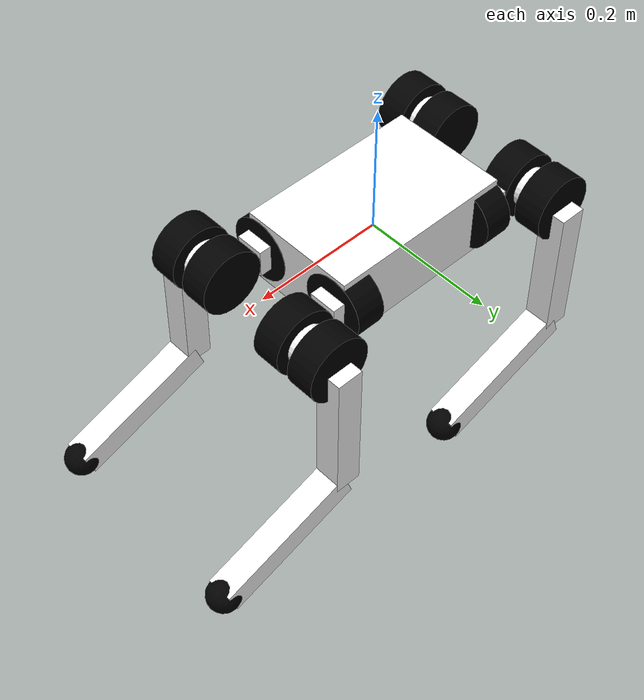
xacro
<?xml version="1.0"?>
<robot xmlns:xacro="http://www.ros.org/wiki/xacro" name="padwq">

    <xacro:arg name="prefix" default=""/>

    <!-- import materials -->
    <xacro:include filename="$(find padwq_description)/urdf/padwq.materials.xacro"/>

    <!-- import robot description -->
    <xacro:include filename="$(find padwq_description)/urdf/padwq.description.xacro"/>

    <!-- import gazebo description -->
    <xacro:include filename="$(find padwq_description)/urdf/padwq.gazebo.xacro"/>

    <!-- import ros2_control description -->
    <xacro:include filename="$(find padwq_description)/urdf/padwq.ros2_control.xacro"/>

    <xacro:padwq prefix="$(arg prefix)"/>
    <xacro:gazebo prefix="$(arg prefix)"/>
    <xacro:padwq_ros2_control name="GazeboSimSystem" prefix="$(arg prefix)"/>

</robot>

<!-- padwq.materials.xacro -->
<robot>
    <material name="black">
        <color rgba="0.0 0.0 0.0 1.0"/>
    </material>

    <material name="blue">
        <color rgba="0.0 0.0 0.8 1.0"/>
    </material>

    <material name="green">
        <color rgba="0.0 0.8 0.0 1.0"/>
    </material>

    <material name="grey">
        <color rgba="0.2 0.2 0.2 1.0"/>
    </material>

    <material name="orange">
        <color rgba="${255/255} ${108/255} ${10/255} 1.0"/>
    </material>

    <material name="brown">
        <color rgba="${222/255} ${207/255} ${195/255} 1.0"/>
    </material>

    <material name="red">
        <color rgba="0.8 0.0 0.0 1.0"/>
    </material>

    <material name="yellow">
        <color rgba="1.0 1.0 0.0 1.0"/>
    </material>

    <material name="white">
        <color rgba="1.0 1.0 1.0 1.0"/>
    </material>
</robot>

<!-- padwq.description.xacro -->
<robot xmlns:xacro="http://www.ros.org/wiki/xacro">

    <xacro:macro name="padwq" params="prefix">

        <xacro:include filename="$(find padwq_description)/urdf/inertia.xacro"/>

        <xacro:property name="deg2rad" value="${pi/180}"/>

        <xacro:property name="rdm_l" value="0.043"/>
        <xacro:property name="rdm_r" value="0.049"/>
        <xacro:property name="connector_l" value="0.019"/>
        <xacro:property name="visual_offset" value="0.001"/>

        <link name="${prefix}base_link">
            <xacro:inertia_box mass="9" x="0.283" y="0.180" z="0.108">
                <origin xyz="0 0 0" rpy="0 0 0"/>
            </xacro:inertia_box>
            <visual>
                <origin rpy="0 0 0" xyz="0 0 0"/>
                <geometry>
                    <box size="0.283 0.180 0.108"/>
                </geometry>
                <material name="white"/>
            </visual>
            <collision>
                <origin rpy="0 0 0" xyz="0 0 0"/>
                <geometry>
                    <box size="0.283 0.180 0.108"/>
                </geometry>
            </collision>
        </link>

        <!-- front left -->
        <joint name="${prefix}fl_base_to_hip" type="fixed">
            <axis xyz="0 0 0"/>
            <parent link="${prefix}base_link"/>
            <child link="${prefix}fl_hip_roll_actuator"/>
            <origin rpy="0 ${pi/2} 0" xyz="0.1415 0.07 0"/>
        </joint>

        <link name="${prefix}fl_hip_roll_actuator">
            <xacro:inertia_cylinder mass="0.62" length="${rdm_l}" radius="${rdm_r}">
                <origin rpy="0 0 0" xyz="0 0 -${rdm_l/2}"/>
            </xacro:inertia_cylinder>
            <visual>
                <origin rpy="0 0 0" xyz="0 0 -${rdm_l/2}"/>
                <geometry>
                    <cylinder length="${rdm_l + visual_offset}" radius="${rdm_r}"/>
                </geometry>
                <material name="black"/>
            </visual>
            <collision>
                <origin rpy="0 0 0" xyz="0 0 -${rdm_l/2}"/>
                <geometry>
                    <cylinder length="${rdm_l}" radius="${rdm_r}"/>
                </geometry>
            </collision>
        </link>

        <joint name="${prefix}fl_hip_roll" type="revolute">
            <axis xyz="0 0 1"/>
            <parent link="${prefix}fl_hip_roll_actuator"/>
            <child link="${prefix}fl_hip_pitch_connector"/>
            <origin rpy="0 0 0" xyz="0 0 0"/>
            <limit effort="20.0" lower="${-30 * deg2rad}" upper="${30 * deg2rad}" velocity="10"/>
            <dynamics damping="1.0" friction="1.0"/>
        </joint>

        <link name="${prefix}fl_hip_pitch_connector">
            <xacro:inertia_box mass="0.05" x="${rdm_l}" y="${rdm_l}" z="${connector_l}">
                <origin rpy="0 0 0" xyz="0 0 ${connector_l/2}"/>
            </xacro:inertia_box>
            <visual>
                <origin rpy="0 0 0" xyz="0 0 ${connector_l/2}"/>
                <geometry>
                    <box size="${rdm_l} ${rdm_l} ${connector_l}"/>
                </geometry>
                <material name="white"/>
            </visual>
            <collision>
                <origin rpy="0 0 0" xyz="0 0 ${connector_l/2}"/>
                <geometry>
                    <box size="${rdm_l} ${rdm_l} ${connector_l}"/>
                </geometry>
            </collision>
        </link>

        <joint name="${prefix}fl_hip_pitch" type="revolute">
            <axis xyz="0 0 1"/>
            <parent link="${prefix}fl_hip_pitch_connector"/>
            <child link="${prefix}fl_hip_pitch_actuator"/>
            <origin rpy="${pi/2} 0 0" xyz="0 ${rdm_l/2} 0.068"/>
            <limit effort="20.0" lower="${-51 * deg2rad}" upper="${93 * deg2rad}" velocity="10"/>
            <dynamics damping="1.0" friction="1.0"/>
        </joint>

        <link name="${prefix}fl_hip_pitch_actuator">
            <xacro:inertia_cylinder mass="0.62" length="${rdm_l}" radius="${rdm_r}">
                <origin rpy="0 0 0" xyz="0 0 ${rdm_l/2}"/>
            </xacro:inertia_cylinder>
            <visual>
                <origin rpy="0 0 0" xyz="0 0 ${rdm_l/2}"/>
                <geometry>
                    <cylinder length="${rdm_l}" radius="${rdm_r}"/>
                </geometry>
                <material name="black"/>
            </visual>
            <collision>
                <origin rpy="0 0 0" xyz="0 0 ${rdm_l/2}"/>
                <geometry>
                    <cylinder length="${rdm_l}" radius="${rdm_r}"/>
                </geometry>
            </collision>
        </link>

        <joint name="${prefix}fl_hip_to_knee" type="fixed">
            <parent link="${prefix}fl_hip_pitch_actuator"/>
            <child link="${prefix}fl_knee_pitch_connector"/>
            <origin rpy="0 0 0" xyz="0 0 0"/>
        </joint>

        <link name="${prefix}fl_knee_pitch_connector">
            <xacro:inertia_cylinder mass="0.05" length="${connector_l}" radius="0.03">
                <origin rpy="0 0 0" xyz="0 0 -${connector_l/2}"/>
            </xacro:inertia_cylinder>
            <visual>
                <origin rpy="0 0 0" xyz="0 0 -${connector_l/2}"/>
                <geometry>
                    <cylinder length="${connector_l}" radius="0.03"/>
                </geometry>
                <material name="white"/>
            </visual>
            <collision>
                <origin rpy="0 0 0" xyz="0 0 -${connector_l/2}"/>
                <geometry>
                    <cylinder length="${connector_l}" radius="0.03"/>
                </geometry>
            </collision>
        </link>

        <joint name="${prefix}fl_knee_connector_to_actuator" type="fixed">
            <parent link="${prefix}fl_knee_pitch_connector"/>
            <child link="${prefix}fl_knee_pitch_actuator"/>
            <origin rpy="0 0 0" xyz="0 0 -0.062"/>
        </joint>

        <link name="${prefix}fl_knee_pitch_actuator">
            <xacro:inertia_cylinder mass="0.62" length="${rdm_l}" radius="${rdm_r}">
                <origin rpy="0 0 0" xyz="0 0 ${rdm_l/2}"/>
            </xacro:inertia_cylinder>
            <visual>
                <origin rpy="0 0 0" xyz="0 0 ${rdm_l/2}"/>
                <geometry>
                    <cylinder length="${rdm_l}" radius="${rdm_r}"/>
                </geometry>
                <material name="black"/>
            </visual>
            <collision>
                <origin rpy="0 0 0" xyz="0 0 ${rdm_l/2}"/>
                <geometry>
                    <cylinder length="${rdm_l}" radius="${rdm_r}"/>
                </geometry>
            </collision>
        </link>

        <joint name="${prefix}fl_knee_pitch_actuator_to_upper_link" type="fixed">
            <parent link="${prefix}fl_knee_pitch_actuator"/>
            <child link="${prefix}fl_upper_link"/>
            <origin rpy="0 0 0" xyz="0 0 0"/>
        </joint>

        <link name="${prefix}fl_upper_link">
            <xacro:inertia_box mass="0.2" x="0.22" y="0.04" z="0.04">
                <origin rpy="0 0 0" xyz="0.11 0 0"/>
            </xacro:inertia_box>
            <visual>
                <origin rpy="0 0 0" xyz="0.11 0 0"/>
                <geometry>
                    <box size="0.22 0.04 0.04"/>
                </geometry>
                <material name="white"/>
            </visual>
            <collision>
                <origin rpy="0 0 0" xyz="0.11 0 0"/>
                <geometry>
                    <box size="0.22 0.04 0.04"/>
                </geometry>
            </collision>
        </link>

        <joint name="${prefix}fl_knee_pitch" type="revolute">
            <axis xyz="0 0 1"/>
            <parent link="${prefix}fl_upper_link"/>
            <child link="${prefix}fl_under_link"/>
            <origin rpy="0 0 0" xyz="0.22 0 0"/>
            <limit effort="20.0" lower="${7 * deg2rad}" upper="${134 * deg2rad}" velocity="10"/>
            <dynamics damping="1.0" friction="1.0"/>
        </joint>

        <link name="${prefix}fl_under_link">
            <xacro:inertia_box mass="0.08" x="0.22" y="0.04" z="0.04">
                <origin rpy="0 0 0" xyz="0.11 0 0"/>
            </xacro:inertia_box>
            <visual>
                <origin rpy="0 0 0" xyz="0.11 0 0"/>
                <geometry>
                    <box size="0.22 0.04 0.04"/>
                </geometry>
                <material name="white"/>
            </visual>
            <collision>
                <origin rpy="0 0 0" xyz="0.11 0 0"/>
                <geometry>
                    <box size="0.22 0.04 0.04"/>
                </geometry>
            </collision>
        </link>

        <joint name="${prefix}fl_foot" type="fixed">
            <axis xyz="0 1 0"/>
            <parent link="${prefix}fl_under_link"/>
            <child link="${prefix}fl_foot"/>
            <origin rpy="0 0 0" xyz="0.22 0 0"/>
        </joint>

        <link name="${prefix}fl_foot">
            <visual>
                <origin rpy="0 0 0" xyz="0 0 0"/>
                <geometry>
                    <sphere radius="0.025"/>
                </geometry>
                <material name="black"/>
            </visual>
            <collision>
                <origin rpy="0 0 0" xyz="0 0 0"/>
                <geometry>
                    <sphere radius="0.025"/>
                </geometry>
            </collision>
        </link>

        <!-- front right -->

        <joint name="${prefix}fr_base_to_hip" type="fixed">
            <axis xyz="0 0 0"/>
            <parent link="${prefix}base_link"/>
            <child link="${prefix}fr_hip_roll_actuator"/>
            <origin rpy="0 ${pi/2} 0" xyz="0.1415 -0.07 0"/>
        </joint>

        <link name="${prefix}fr_hip_roll_actuator">
            <xacro:inertia_cylinder mass="0.62" length="${rdm_l}" radius="${rdm_r}">
                <origin rpy="0 0 0" xyz="0 0 ${-rdm_l/2}"/>
            </xacro:inertia_cylinder>
            <visual>
                <origin rpy="0 0 0" xyz="0 0 ${-rdm_l/2}"/>
                <geometry>
                    <cylinder length="${rdm_l + visual_offset}" radius="${rdm_r}"/>
                </geometry>
                <material name="black"/>
            </visual>
            <collision>
                <origin rpy="0 0 0" xyz="0 0 ${-rdm_l/2}"/>
                <geometry>
                    <cylinder length="${rdm_l}" radius="${rdm_r}"/>
                </geometry>
            </collision>
        </link>

        <joint name="${prefix}fr_hip_roll" type="revolute">
            <axis xyz="0 0 1"/>
            <parent link="${prefix}fr_hip_roll_actuator"/>
            <child link="${prefix}fr_hip_pitch_connector"/>
            <origin rpy="0 0 0" xyz="0 0 0"/>
            <limit effort="20.0" lower="${-30 * deg2rad}" upper="${30 * deg2rad}" velocity="10"/>
            <dynamics damping="1.0" friction="1.0"/>
        </joint>

        <link name="${prefix}fr_hip_pitch_connector">
            <xacro:inertia_box mass="0.05" x="${rdm_l}" y="${rdm_l}" z="${connector_l}">
                <origin rpy="0 0 0" xyz="0 0 ${connector_l/2}"/>
            </xacro:inertia_box>
            <visual>
                <origin rpy="0 0 0" xyz="0 0 ${connector_l/2}"/>
                <geometry>
                    <box size="${rdm_l} ${rdm_l} ${connector_l}"/>
                </geometry>
                <material name="white"/>
            </visual>
            <collision>
                <origin rpy="0 0 0" xyz="0 0 ${connector_l/2}"/>
                <geometry>
                    <box size="${rdm_l} ${rdm_l} ${connector_l}"/>
                </geometry>
            </collision>
        </link>

        <joint name="${prefix}fr_hip_pitch" type="revolute">
            <axis xyz="0 0 1"/>
            <parent link="${prefix}fr_hip_pitch_connector"/>
            <child link="${prefix}fr_hip_pitch_actuator"/>
            <origin rpy="${pi/2} 0 0" xyz="0 -${rdm_l/2} 0.068"/>
            <limit effort="20.0" lower="${-51 * deg2rad}" upper="${93 * deg2rad}" velocity="10"/>
            <dynamics damping="1.0" friction="1.0"/>
        </joint>

        <link name="${prefix}fr_hip_pitch_actuator">
            <xacro:inertia_cylinder mass="0.62" length="${rdm_l}" radius="${rdm_r}">
                <origin rpy="0 0 0" xyz="0 0 -${rdm_l/2}"/>
            </xacro:inertia_cylinder>
            <visual>
                <origin rpy="0 0 0" xyz="0 0 -${rdm_l/2}"/>
                <geometry>
                    <cylinder length="${rdm_l}" radius="${rdm_r}"/>
                </geometry>
                <material name="black"/>
            </visual>
            <collision>
                <origin rpy="0 0 0" xyz="0 0 -${rdm_l/2}"/>
                <geometry>
                    <cylinder length="${rdm_l}" radius="${rdm_r}"/>
                </geometry>
            </collision>
        </link>

        <joint name="${prefix}fr_hip_to_knee" type="fixed">
            <parent link="${prefix}fr_hip_pitch_actuator"/>
            <child link="${prefix}fr_knee_pitch_connector"/>
            <origin rpy="0 0 0" xyz="0 0 0"/>
        </joint>

        <link name="${prefix}fr_knee_pitch_connector">
            <xacro:inertia_cylinder mass="0.05" length="${connector_l}" radius="0.03">
                <origin rpy="0 0 0" xyz="0 0 ${connector_l/2}"/>
            </xacro:inertia_cylinder>
            <visual>
                <origin rpy="0 0 0" xyz="0 0 ${connector_l/2}"/>
                <geometry>
                    <cylinder length="${connector_l}" radius="0.03"/>
                </geometry>
                <material name="white"/>
            </visual>
            <collision>
                <origin rpy="0 0 0" xyz="0 0 ${connector_l/2}"/>
                <geometry>
                    <cylinder length="${connector_l}" radius="0.03"/>
                </geometry>
            </collision>
        </link>

        <joint name="${prefix}fr_knee_connector_to_actuator" type="fixed">
            <parent link="${prefix}fr_knee_pitch_connector"/>
            <child link="${prefix}fr_knee_pitch_actuator"/>
            <origin rpy="0 0 0" xyz="0 0 0.062"/>
        </joint>

        <link name="${prefix}fr_knee_pitch_actuator">
            <xacro:inertia_cylinder mass="0.62" length="${rdm_l}" radius="${rdm_r}">
                <origin rpy="0 0 0" xyz="0 0 -${rdm_l/2}"/>
            </xacro:inertia_cylinder>
            <visual>
                <origin rpy="0 0 0" xyz="0 0 -${rdm_l/2}"/>
                <geometry>
                    <cylinder length="${rdm_l}" radius="${rdm_r}"/>
                </geometry>
                <material name="black"/>
            </visual>
            <collision>
                <origin rpy="0 0 0" xyz="0 0 -${rdm_l/2}"/>
                <geometry>
                    <cylinder length="${rdm_l}" radius="${rdm_r}"/>
                </geometry>
            </collision>
        </link>

        <joint name="${prefix}fr_knee_pitch_actuator_to_upper_link" type="fixed">
            <parent link="${prefix}fr_knee_pitch_actuator"/>
            <child link="${prefix}fr_upper_link"/>
            <origin rpy="0 0 0" xyz="0 0 0"/>
        </joint>

        <link name="${prefix}fr_upper_link">
            <xacro:inertia_box mass="0.2" x="0.22" y="0.04" z="0.04">
                <origin rpy="0 0 0" xyz="0.11 0 0"/>
            </xacro:inertia_box>
            <visual>
                <origin rpy="0 0 0" xyz="0.11 0 0"/>
                <geometry>
                    <box size="0.22 0.04 0.04"/>
                </geometry>
                <material name="white"/>
            </visual>
            <collision>
                <origin rpy="0 0 0" xyz="0.11 0 0"/>
                <geometry>
                    <box size="0.22 0.04 0.04"/>
                </geometry>
            </collision>
        </link>

        <joint name="${prefix}fr_knee_pitch" type="revolute">
            <axis xyz="0 0 1"/>
            <parent link="${prefix}fr_upper_link"/>
            <child link="${prefix}fr_under_link"/>
            <origin rpy="0 0 0" xyz="0.22 0 0"/>
            <limit effort="20.0" lower="${7 * deg2rad}" upper="${134 * deg2rad}" velocity="10"/>
            <dynamics damping="1.0" friction="1.0"/>
        </joint>

        <link name="${prefix}fr_under_link">
            <xacro:inertia_box mass="0.08" x="0.22" y="0.04" z="0.04">
                <origin rpy="0 0 0" xyz="0.11 0 0"/>
            </xacro:inertia_box>
            <visual>
                <origin rpy="0 0 0" xyz="0.11 0 0"/>
                <geometry>
                    <box size="0.22 0.04 0.04"/>
                </geometry>
                <material name="white"/>
            </visual>
            <collision>
                <origin rpy="0 0 0" xyz="0.11 0 0"/>
                <geometry>
                    <box size="0.22 0.04 0.04"/>
                </geometry>
            </collision>
        </link>

        <joint name="${prefix}fr_foot" type="fixed">
            <axis xyz="0 1 0"/>
            <parent link="${prefix}fr_under_link"/>
            <child link="${prefix}fr_foot"/>
            <origin rpy="0 0 0" xyz="0.22 0 0"/>
        </joint>

        <link name="${prefix}fr_foot">
            <visual>
                <origin rpy="0 0 0" xyz="0 0 0"/>
                <geometry>
                    <sphere radius="0.025"/>
                </geometry>
                <material name="black"/>
            </visual>
            <collision>
                <origin rpy="0 0 0" xyz="0 0 0"/>
                <geometry>
                    <sphere radius="0.025"/>
                </geometry>
            </collision>
        </link>

        <!-- rear left -->

        <joint name="${prefix}rl_base_to_hip" type="fixed">
            <axis xyz="0 0 0"/>
            <parent link="${prefix}base_link"/>
            <child link="${prefix}rl_hip_roll_actuator"/>
            <origin rpy="0 ${pi/2} 0" xyz="-0.1415 0.07 0"/>
        </joint>

        <link name="${prefix}rl_hip_roll_actuator">
            <xacro:inertia_cylinder mass="0.62" length="${rdm_l}" radius="${rdm_r}">
                <origin rpy="0 0 0" xyz="0 0 ${rdm_l/2}"/>
            </xacro:inertia_cylinder>
            <visual>
                <origin rpy="0 0 0" xyz="0 0 ${rdm_l/2}"/>
                <geometry>
                    <cylinder length="${rdm_l + visual_offset}" radius="${rdm_r}"/>
                </geometry>
                <material name="black"/>
            </visual>
            <collision>
                <origin rpy="0 0 0" xyz="0 0 ${rdm_l/2}"/>
                <geometry>
                    <cylinder length="${rdm_l}" radius="${rdm_r}"/>
                </geometry>
            </collision>
        </link>

        <joint name="${prefix}rl_hip_roll" type="revolute">
            <axis xyz="0 0 1"/>
            <parent link="${prefix}rl_hip_roll_actuator"/>
            <child link="${prefix}rl_hip_pitch_connector"/>
            <origin rpy="0 0 0" xyz="0 0 0"/>
            <limit effort="20.0" lower="${-30 * deg2rad}" upper="${30 * deg2rad}" velocity="10"/>
            <dynamics damping="1.0" friction="1.0"/>
        </joint>

        <link name="${prefix}rl_hip_pitch_connector">
            <xacro:inertia_box mass="0.05" x="${rdm_l}" y="${rdm_l}" z="${connector_l}">
                <origin rpy="0 0 0" xyz="0 0 -${connector_l/2}"/>
            </xacro:inertia_box>
            <visual>
                <origin rpy="0 0 0" xyz="0 0 -${connector_l/2}"/>
                <geometry>
                    <box size="${rdm_l} ${rdm_l} ${connector_l}"/>
                </geometry>
                <material name="white"/>
            </visual>
            <collision>
                <origin rpy="0 0 0" xyz="0 0 -${connector_l/2}"/>
                <geometry>
                    <box size="${rdm_l} ${rdm_l} ${connector_l}"/>
                </geometry>
            </collision>
        </link>

        <joint name="${prefix}rl_hip_pitch" type="revolute">
            <axis xyz="0 0 1"/>
            <parent link="${prefix}rl_hip_pitch_connector"/>
            <child link="${prefix}rl_hip_pitch_actuator"/>
            <origin rpy="${pi/2} 0 0" xyz="0 ${rdm_l/2} -0.068"/>
            <limit effort="20.0" lower="${-51 * deg2rad}" upper="${93 * deg2rad}" velocity="10"/>
            <dynamics damping="1.0" friction="1.0"/>
        </joint>

        <link name="${prefix}rl_hip_pitch_actuator">
            <xacro:inertia_cylinder mass="0.62" length="${rdm_l}" radius="${rdm_r}">
                <origin rpy="0 0 0" xyz="0 0 ${rdm_l/2}"/>
            </xacro:inertia_cylinder>
            <visual>
                <origin rpy="0 0 0" xyz="0 0 ${rdm_l/2}"/>
                <geometry>
                    <cylinder length="${rdm_l}" radius="${rdm_r}"/>
                </geometry>
                <material name="black"/>
            </visual>
            <collision>
                <origin rpy="0 0 0" xyz="0 0 ${rdm_l/2}"/>
                <geometry>
                    <cylinder length="${rdm_l}" radius="${rdm_r}"/>
                </geometry>
            </collision>
        </link>

        <joint name="${prefix}rl_hip_to_knee" type="fixed">
            <parent link="${prefix}rl_hip_pitch_actuator"/>
            <child link="${prefix}rl_knee_pitch_connector"/>
            <origin rpy="0 0 0" xyz="0 0 0"/>
        </joint>

        <link name="${prefix}rl_knee_pitch_connector">
            <xacro:inertia_cylinder mass="0.05" length="${connector_l}" radius="0.03">
                <origin rpy="0 0 0" xyz="0 0 -${connector_l/2}"/>
            </xacro:inertia_cylinder>
            <visual>
                <origin rpy="0 0 0" xyz="0 0 -${connector_l/2}"/>
                <geometry>
                    <cylinder length="${connector_l}" radius="0.03"/>
                </geometry>
                <material name="white"/>
            </visual>
            <collision>
                <origin rpy="0 0 0" xyz="0 0 -${connector_l/2}"/>
                <geometry>
                    <cylinder length="${connector_l}" radius="0.03"/>
                </geometry>
            </collision>
        </link>

        <joint name="${prefix}rl_knee_connector_to_actuator" type="fixed">
            <parent link="${prefix}rl_knee_pitch_connector"/>
            <child link="${prefix}rl_knee_pitch_actuator"/>
            <origin rpy="0 0 0" xyz="0 0 -0.062"/>
        </joint>

        <link name="${prefix}rl_knee_pitch_actuator">
            <xacro:inertia_cylinder mass="0.62" length="${rdm_l}" radius="${rdm_r}">
                <origin rpy="0 0 0" xyz="0 0 ${rdm_l/2}"/>
            </xacro:inertia_cylinder>
            <visual>
                <origin rpy="0 0 0" xyz="0 0 ${rdm_l/2}"/>
                <geometry>
                    <cylinder length="${rdm_l}" radius="${rdm_r}"/>
                </geometry>
                <material name="black"/>
            </visual>
            <collision>
                <origin rpy="0 0 0" xyz="0 0 ${rdm_l/2}"/>
                <geometry>
                    <cylinder length="${rdm_l}" radius="${rdm_r}"/>
                </geometry>
            </collision>
        </link>

        <joint name="${prefix}rl_knee_pitch_actuator_to_upper_link" type="fixed">
            <parent link="${prefix}rl_knee_pitch_actuator"/>
            <child link="${prefix}rl_upper_link"/>
            <origin rpy="0 0 0" xyz="0 0 0"/>
        </joint>

        <link name="${prefix}rl_upper_link">
            <xacro:inertia_box mass="0.2" x="0.22" y="0.04" z="0.04">
                <origin rpy="0 0 0" xyz="0.11 0 0"/>
            </xacro:inertia_box>
            <visual>
                <origin rpy="0 0 0" xyz="0.11 0 0"/>
                <geometry>
                    <box size="0.22 0.04 0.04"/>
                </geometry>
                <material name="white"/>
            </visual>
            <collision>
                <origin rpy="0 0 0" xyz="0.11 0 0"/>
                <geometry>
                    <box size="0.22 0.04 0.04"/>
                </geometry>
            </collision>
        </link>

        <joint name="${prefix}rl_knee_pitch" type="revolute">
            <axis xyz="0 0 1"/>
            <parent link="${prefix}rl_upper_link"/>
            <child link="${prefix}rl_under_link"/>
            <origin rpy="0 0 0" xyz="0.22 0 0"/>
            <limit effort="20.0" lower="${7 * deg2rad}" upper="${134 * deg2rad}" velocity="10"/>
            <dynamics damping="1.0" friction="1.0"/>
        </joint>

        <link name="${prefix}rl_under_link">
            <xacro:inertia_box mass="0.08" x="0.22" y="0.04" z="0.04">
                <origin rpy="0 0 0" xyz="0.11 0 0"/>
            </xacro:inertia_box>
            <visual>
                <origin rpy="0 0 0" xyz="0.11 0 0"/>
                <geometry>
                    <box size="0.22 0.04 0.04"/>
                </geometry>
                <material name="white"/>
            </visual>
            <collision>
                <origin rpy="0 0 0" xyz="0.11 0 0"/>
                <geometry>
                    <box size="0.22 0.04 0.04"/>
                </geometry>
            </collision>
        </link>

        <joint name="${prefix}rl_foot" type="fixed">
            <axis xyz="0 1 0"/>
            <parent link="${prefix}rl_under_link"/>
            <child link="${prefix}rl_foot"/>
            <origin rpy="0 0 0" xyz="0.22 0 0"/>
        </joint>

        <link name="${prefix}rl_foot">
            <visual>
                <origin rpy="0 0 0" xyz="0 0 0"/>
                <geometry>
                    <sphere radius="0.025"/>
                </geometry>
                <material name="black"/>
            </visual>
            <collision>
                <origin rpy="0 0 0" xyz="0 0 0"/>
                <geometry>
                    <sphere radius="0.025"/>
                </geometry>
            </collision>
        </link>

        <!-- rear right -->

        <joint name="${prefix}rr_base_to_hip" type="fixed">
            <axis xyz="0 0 0"/>
            <parent link="${prefix}base_link"/>
            <child link="${prefix}rr_hip_roll_actuator"/>
            <origin rpy="0 ${pi/2} 0" xyz="-0.1415 -0.07 0"/>
        </joint>

        <link name="${prefix}rr_hip_roll_actuator">
            <xacro:inertia_cylinder mass="0.62" length="${rdm_l}" radius="${rdm_r}">
                <origin rpy="0 0 0" xyz="0 0 ${rdm_l/2}"/>
            </xacro:inertia_cylinder>
            <visual>
                <origin rpy="0 0 0" xyz="0 0 ${rdm_l/2}"/>
                <geometry>
                    <cylinder length="${rdm_l + visual_offset}" radius="${rdm_r}"/>
                </geometry>
                <material name="black"/>
            </visual>
            <collision>
                <origin rpy="0 0 0" xyz="0 0 ${rdm_l/2}"/>
                <geometry>
                    <cylinder length="${rdm_l}" radius="${rdm_r}"/>
                </geometry>
            </collision>
        </link>

        <joint name="${prefix}rr_hip_roll" type="revolute">
            <axis xyz="0 0 1"/>
            <parent link="${prefix}rr_hip_roll_actuator"/>
            <child link="${prefix}rr_hip_pitch_connector"/>
            <origin rpy="0 0 0" xyz="0 0 0"/>
            <limit effort="20.0" lower="${-30 * deg2rad}" upper="${30 * deg2rad}" velocity="10"/>
            <dynamics damping="1.0" friction="1.0"/>
        </joint>

        <link name="${prefix}rr_hip_pitch_connector">
            <xacro:inertia_box mass="0.05" x="${rdm_l}" y="${rdm_l}" z="${connector_l}">
                <origin rpy="0 0 0" xyz="0 0 -${connector_l/2}"/>
            </xacro:inertia_box>
            <visual>
                <origin rpy="0 0 0" xyz="0 0 -${connector_l/2}"/>
                <geometry>
                    <box size="${rdm_l} ${rdm_l} ${connector_l}"/>
                </geometry>
                <material name="white"/>
            </visual>
            <collision>
                <origin rpy="0 0 0" xyz="0 0 -${connector_l/2}"/>
                <geometry>
                    <box size="${rdm_l} ${rdm_l} ${connector_l}"/>
                </geometry>
            </collision>
        </link>

        <joint name="${prefix}rr_hip_pitch" type="revolute">
            <axis xyz="0 0 1"/>
            <parent link="${prefix}rr_hip_pitch_connector"/>
            <child link="${prefix}rr_hip_pitch_actuator"/>
            <origin rpy="${pi/2} 0 0" xyz="0 -${rdm_l/2} -0.068"/>
            <limit effort="20.0" lower="${-51 * deg2rad}" upper="${93 * deg2rad}" velocity="10"/>
            <dynamics damping="1.0" friction="1.0"/>
        </joint>

        <link name="${prefix}rr_hip_pitch_actuator">
            <xacro:inertia_cylinder mass="0.62" length="${rdm_l}" radius="${rdm_r}">
                <origin rpy="0 0 0" xyz="0 0 -${rdm_l/2}"/>
            </xacro:inertia_cylinder>
            <visual>
                <origin rpy="0 0 0" xyz="0 0 -${rdm_l/2}"/>
                <geometry>
                    <cylinder length="${rdm_l}" radius="${rdm_r}"/>
                </geometry>
                <material name="black"/>
            </visual>
            <collision>
                <origin rpy="0 0 0" xyz="0 0 -${rdm_l/2}"/>
                <geometry>
                    <cylinder length="${rdm_l}" radius="${rdm_r}"/>
                </geometry>
            </collision>
        </link>

        <joint name="${prefix}rr_hip_to_knee" type="fixed">
            <parent link="${prefix}rr_hip_pitch_actuator"/>
            <child link="${prefix}rr_knee_pitch_connector"/>
            <origin rpy="0 0 0" xyz="0 0 0"/>
        </joint>

        <link name="${prefix}rr_knee_pitch_connector">
            <xacro:inertia_cylinder mass="0.05" length="${connector_l}" radius="0.03">
                <origin rpy="0 0 0" xyz="0 0 ${connector_l/2}"/>
            </xacro:inertia_cylinder>
            <visual>
                <origin rpy="0 0 0" xyz="0 0 ${connector_l/2}"/>
                <geometry>
                    <cylinder length="${connector_l}" radius="0.03"/>
                </geometry>
                <material name="white"/>
            </visual>
            <collision>
                <origin rpy="0 0 0" xyz="0 0 ${connector_l/2}"/>
                <geometry>
                    <cylinder length="${connector_l}" radius="0.03"/>
                </geometry>
            </collision>
        </link>

        <joint name="${prefix}rr_knee_connector_to_actuator" type="fixed">
            <parent link="${prefix}rr_knee_pitch_connector"/>
            <child link="${prefix}rr_knee_pitch_actuator"/>
            <origin rpy="0 0 0" xyz="0 0 0.062"/>
        </joint>

        <link name="${prefix}rr_knee_pitch_actuator">
            <xacro:inertia_cylinder mass="0.62" length="${rdm_l}" radius="${rdm_r}">
                <origin rpy="0 0 0" xyz="0 0 -${rdm_l/2}"/>
            </xacro:inertia_cylinder>
            <visual>
                <origin rpy="0 0 0" xyz="0 0 -${rdm_l/2}"/>
                <geometry>
                    <cylinder length="${rdm_l}" radius="${rdm_r}"/>
                </geometry>
                <material name="black"/>
            </visual>
            <collision>
                <origin rpy="0 0 0" xyz="0 0 -${rdm_l/2}"/>
                <geometry>
                    <cylinder length="${rdm_l}" radius="${rdm_r}"/>
                </geometry>
            </collision>
        </link>

        <joint name="${prefix}rr_knee_pitch_actuator_to_upper_link" type="fixed">
            <parent link="${prefix}rr_knee_pitch_actuator"/>
            <child link="${prefix}rr_upper_link"/>
            <origin rpy="0 0 0" xyz="0 0 0"/>
        </joint>

        <link name="${prefix}rr_upper_link">
            <xacro:inertia_box mass="0.2" x="0.22" y="0.04" z="0.04">
                <origin rpy="0 0 0" xyz="0.11 0 0"/>
            </xacro:inertia_box>
            <visual>
                <origin rpy="0 0 0" xyz="0.11 0 0"/>
                <geometry>
                    <box size="0.22 0.04 0.04"/>
                </geometry>
                <material name="white"/>
            </visual>
            <collision>
                <origin rpy="0 0 0" xyz="0.11 0 0"/>
                <geometry>
                    <box size="0.22 0.04 0.04"/>
                </geometry>
            </collision>
        </link>

        <joint name="${prefix}rr_knee_pitch" type="revolute">
            <axis xyz="0 0 1"/>
            <parent link="${prefix}rr_upper_link"/>
            <child link="${prefix}rr_under_link"/>
            <origin rpy="0 0 0" xyz="0.22 0 0"/>
            <limit effort="20.0" lower="${7 * deg2rad}" upper="${134 * deg2rad}" velocity="10"/>
            <dynamics damping="1.0" friction="1.0"/>
        </joint>

        <link name="${prefix}rr_under_link">
            <xacro:inertia_box mass="0.08" x="0.22" y="0.04" z="0.04">
                <origin rpy="0 0 0" xyz="0.11 0 0"/>
            </xacro:inertia_box>
            <visual>
                <origin rpy="0 0 0" xyz="0.11 0 0"/>
                <geometry>
                    <box size="0.22 0.04 0.04"/>
                </geometry>
                <material name="white"/>
            </visual>
            <collision>
                <origin rpy="0 0 0" xyz="0.11 0 0"/>
                <geometry>
                    <box size="0.22 0.04 0.04"/>
                </geometry>
            </collision>
        </link>

        <joint name="${prefix}rr_foot" type="fixed">
            <axis xyz="0 1 0"/>
            <parent link="${prefix}rr_under_link"/>
            <child link="${prefix}rr_foot"/>
            <origin rpy="0 0 0" xyz="0.22 0 0"/>
        </joint>

        <link name="${prefix}rr_foot">
            <visual>
                <origin rpy="0 0 0" xyz="0 0 0"/>
                <geometry>
                    <sphere radius="0.025"/>
                </geometry>
                <material name="black"/>
            </visual>
            <collision>
                <origin rpy="0 0 0" xyz="0 0 0"/>
                <geometry>
                    <sphere radius="0.025"/>
                </geometry>
            </collision>
        </link>

    </xacro:macro>

</robot>

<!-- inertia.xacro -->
<robot xmlns:xacro="http://www.ros.org/wiki/xacro" >

    <xacro:macro name="inertia_sphere" params="mass radius *origin">
        <inertial>
            <xacro:insert_block name="origin"/>
            <mass value="${mass}" />
            <inertia ixx="${(2/5) * mass * (radius*radius)}" ixy="0.0" ixz="0.0"
                iyy="${(2/5) * mass * (radius*radius)}" iyz="0.0"
                izz="${(2/5) * mass * (radius*radius)}" />
        </inertial>
    </xacro:macro>

    <xacro:macro name="inertia_box" params="mass x y z *origin">
        <inertial>
            <xacro:insert_block name="origin"/>
            <mass value="${mass}" />
            <inertia ixx="${(1/12) * mass * (y*y+z*z)}" ixy="0.0" ixz="0.0"
                iyy="${(1/12) * mass * (x*x+z*z)}" iyz="0.0"
                izz="${(1/12) * mass * (x*x+y*y)}" />
        </inertial>
    </xacro:macro>

    <xacro:macro name="inertia_cylinder" params="mass length radius *origin">
        <inertial>
            <xacro:insert_block name="origin"/>
            <mass value="${mass}" />
            <inertia ixx="${(1/12) * mass * (3*radius*radius + length*length)}" ixy="0.0" ixz="0.0"
                iyy="${(1/12) * mass * (3*radius*radius + length*length)}" iyz="0.0"
                izz="${(1/2) * mass * (radius*radius)}" />
        </inertial>
    </xacro:macro>

</robot>
